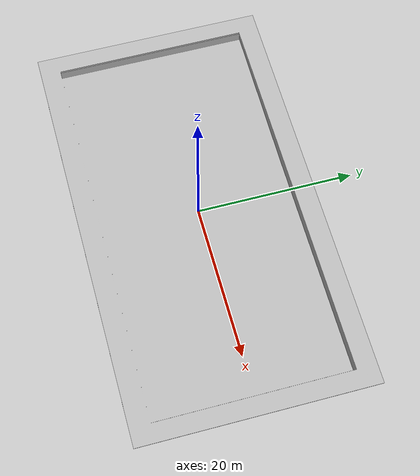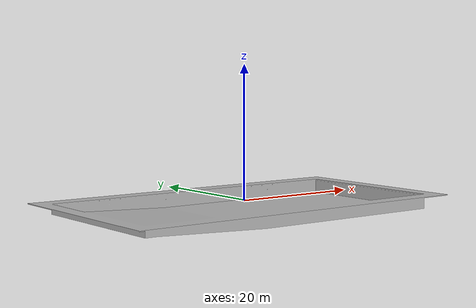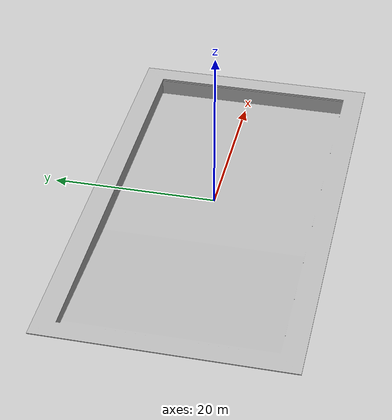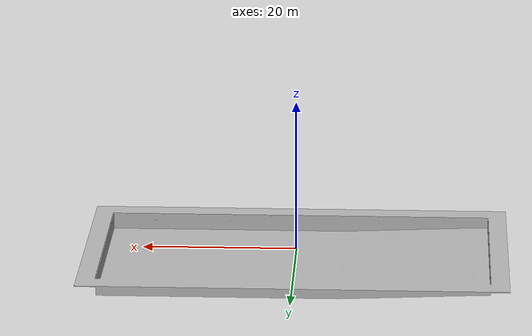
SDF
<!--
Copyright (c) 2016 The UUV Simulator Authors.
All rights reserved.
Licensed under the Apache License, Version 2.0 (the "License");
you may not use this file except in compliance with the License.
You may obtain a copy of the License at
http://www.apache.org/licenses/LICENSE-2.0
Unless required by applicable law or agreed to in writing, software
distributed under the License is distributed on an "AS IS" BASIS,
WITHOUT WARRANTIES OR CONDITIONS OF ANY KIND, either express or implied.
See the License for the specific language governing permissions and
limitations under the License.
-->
<?xml version="1.0" ?>
<sdf version="1.5">
  <model name="pool">
    <static>true</static>
    <link name="link">
      <collision name="pool_geom">
        <pose>0 0 0 0 0 0</pose>
        <geometry>
          <mesh>
            <uri>model://pool/meshes/pool.dae</uri>
          </mesh>
        </geometry>
      </collision>
      <visual name="pool">
        <cast_shadows>true</cast_shadows>
        <pose>0 0 0 0 0 0</pose>
        <geometry>
          <mesh>
            <uri>model://pool/meshes/pool.dae</uri>
          </mesh>
        </geometry>
      </visual>
    </link>
  </model>
</sdf>
